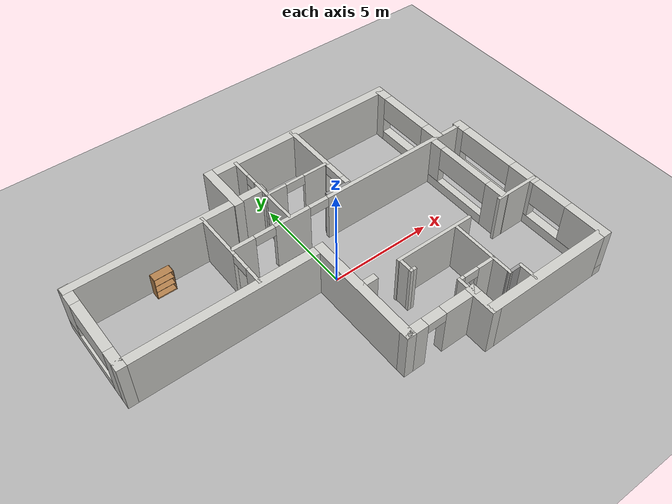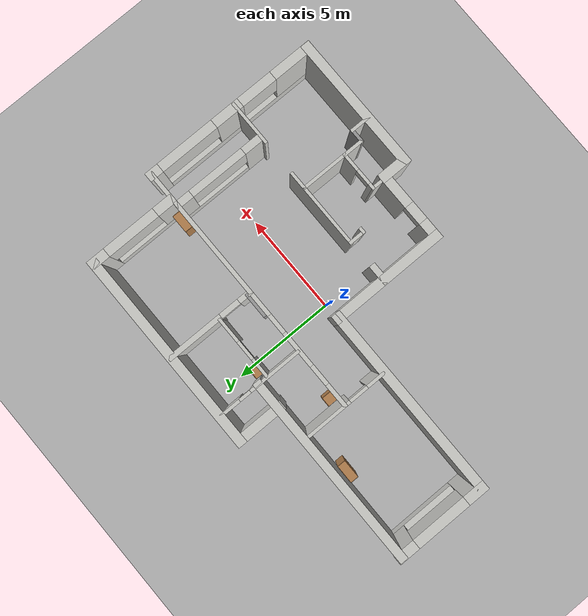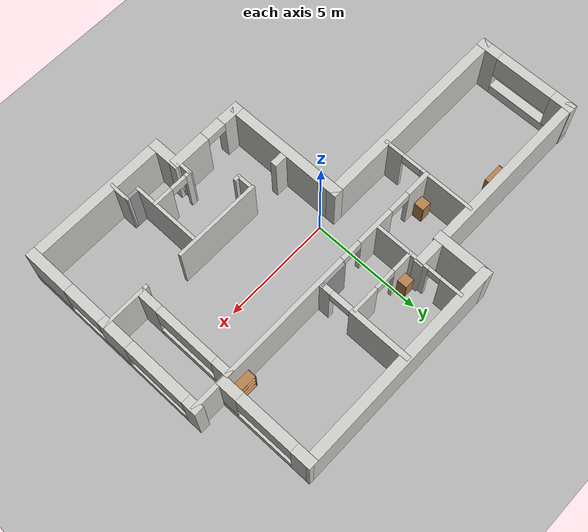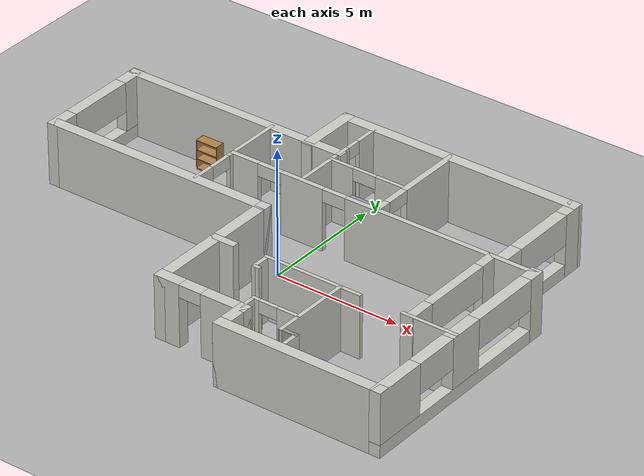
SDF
<sdf version="1.9">
 <world name="default">
  <gravity>0 0 -9.8</gravity>
  <magnetic_field>6e-06 2.3e-05 -4.2e-05</magnetic_field>
  <atmosphere type="adiabatic"/>
  <physics type="ode">
   <max_step_size>0.001</max_step_size>
   <real_time_factor>1</real_time_factor>
   <real_time_update_rate>1000</real_time_update_rate>
  </physics>
  <scene><ambient>0.4 0.4 0.4 1</ambient><background>0.7 0.7 0.7 1</background><shadows>true</shadows></scene>
  <model name="Flat">
   <pose>-0.431116 0.065599 0 0 -0 0</pose>
   <link name="Wall_13">
    <collision name="Wall_13_Collision">
     <geometry><box><size>10.0498 0.45 2.5</size></box></geometry>
     <pose>0 0 1.25 0 -0 0</pose>
    </collision>
    <visual name="Wall_13_Visual">
     <pose>0 0 1.25 0 -0 0</pose>
     <geometry><box><size>10.0498 0.45 2.5</size></box></geometry>
     <material>
      <script><uri>file://media/materials/scripts/gazebo.material</uri><name>Gazebo/CeilingTiled</name></script>
      <ambient>1 1 1 1</ambient>
     </material>
     <meta><layer>0</layer></meta>
    </visual>
    <pose>3.25612 6.4294 0 0 -0 0</pose>
    <inertial>
     <mass>1</mass>
     <inertia><ixx>1</ixx><ixy>0</ixy><ixz>0</ixz><iyy>1</iyy><iyz>0</iyz><izz>1</izz></inertia>
    </inertial>
   </link>
   <link name="Wall_16">
    <pose>-3.24151 2.22302 0 0 0 -1.57039</pose>
    <visual name="Wall_16_Visual_0">
     <pose>-0.939224 0 1.25 0 -0 0</pose>
     <geometry><box><size>2.5474 0.15 2.5</size></box></geometry>
     <material>
      <script><uri>file://media/materials/scripts/gazebo.material</uri><name>Gazebo/CeilingTiled</name></script>
      <ambient>1 1 1 1</ambient>
     </material>
     <meta><layer>0</layer></meta>
    </visual>
    <collision name="Wall_16_Collision_0">
     <geometry><box><size>2.5474 0.15 2.5</size></box></geometry>
     <pose>-0.939224 0 1.25 0 -0 0</pose>
    </collision>
    <visual name="Wall_16_Visual_1">
     <pose>1.74386 0 1.25 0 -0 0</pose>
     <geometry><box><size>0.938123 0.15 2.5</size></box></geometry>
     <material>
      <script><uri>file://media/materials/scripts/gazebo.material</uri><name>Gazebo/CeilingTiled</name></script>
      <ambient>1 1 1 1</ambient>
     </material>
     <meta><layer>0</layer></meta>
    </visual>
    <collision name="Wall_16_Collision_1">
     <geometry><box><size>0.938123 0.15 2.5</size></box></geometry>
     <pose>1.74386 0 1.25 0 -0 0</pose>
    </collision>
    <visual name="Wall_16_Visual_2">
     <pose>0.804637 0 2.25 0 -0 0</pose>
     <geometry><box><size>0.940325 0.15 0.5</size></box></geometry>
     <material>
      <script><uri>file://media/materials/scripts/gazebo.material</uri><name>Gazebo/CeilingTiled</name></script>
      <ambient>1 1 1 1</ambient>
     </material>
     <meta><layer>0</layer></meta>
    </visual>
    <collision name="Wall_16_Collision_2">
     <geometry><box><size>0.940325 0.15 0.5</size></box></geometry>
     <pose>0.804637 0 2.25 0 -0 0</pose>
    </collision>
    <inertial>
     <mass>1</mass>
     <inertia><ixx>1</ixx><ixy>0</ixy><ixz>0</ixz><iyy>1</iyy><iyz>0</iyz><izz>1</izz></inertia>
    </inertial>
   </link>
   <link name="Wall_20">
    <collision name="Wall_20_Collision">
     <geometry><box><size>6.79979 0.45 2.5</size></box></geometry>
     <pose>0 0 1.25 0 -0 0</pose>
    </collision>
    <visual name="Wall_20_Visual">
     <pose>0 0 1.25 0 -0 0</pose>
     <geometry><box><size>6.79979 0.45 2.5</size></box></geometry>
     <material>
      <script><uri>file://media/materials/scripts/gazebo.material</uri><name>Gazebo/CeilingTiled</name></script>
      <ambient>1 1 1 1</ambient>
     </material>
     <meta><layer>0</layer></meta>
    </visual>
    <pose>6.21912 -6.4286 0 0 -0 3.14159</pose>
    <inertial>
     <mass>1</mass>
     <inertia><ixx>1</ixx><ixy>0</ixy><ixz>0</ixz><iyy>1</iyy><iyz>0</iyz><izz>1</izz></inertia>
    </inertial>
   </link>
   <link name="Wall_21">
    <collision name="Wall_21_Collision">
     <geometry><box><size>1.53999 0.45 2.5</size></box></geometry>
     <pose>0 0 1.25 0 -0 0</pose>
    </collision>
    <visual name="Wall_21_Visual">
     <pose>0 0 1.25 0 -0 0</pose>
     <geometry><box><size>1.53999 0.45 2.5</size></box></geometry>
     <material>
      <script><uri>file://media/materials/scripts/gazebo.material</uri><name>Gazebo/CeilingTiled</name></script>
      <ambient>1 1 1 1</ambient>
     </material>
     <meta><layer>0</layer></meta>
    </visual>
    <pose>3.04412 -5.8836 0 0 -0 1.5708</pose>
    <inertial>
     <mass>1</mass>
     <inertia><ixx>1</ixx><ixy>0</ixy><ixz>0</ixz><iyy>1</iyy><iyz>0</iyz><izz>1</izz></inertia>
    </inertial>
   </link>
   <link name="Wall_22">
    <pose>1.37962 -5.3386 0 0 -0 3.14159</pose>
    <visual name="Wall_22_Visual_0">
     <pose>-0.981679 0 1.25 0 -0 0</pose>
     <geometry><box><size>1.81564 0.45 2.5</size></box></geometry>
     <material>
      <script><uri>file://media/materials/scripts/gazebo.material</uri><name>Gazebo/CeilingTiled</name></script>
      <ambient>1 1 1 1</ambient>
     </material>
     <meta><layer>0</layer></meta>
    </visual>
    <collision name="Wall_22_Collision_0">
     <geometry><box><size>1.81564 0.45 2.5</size></box></geometry>
     <pose>-0.981679 0 1.25 0 -0 0</pose>
    </collision>
    <visual name="Wall_22_Visual_1">
     <pose>1.36348 0 1.25 0 -0 0</pose>
     <geometry><box><size>1.05204 0.45 2.5</size></box></geometry>
     <material>
      <script><uri>file://media/materials/scripts/gazebo.material</uri><name>Gazebo/CeilingTiled</name></script>
      <ambient>1 1 1 1</ambient>
     </material>
     <meta><layer>0</layer></meta>
    </visual>
    <collision name="Wall_22_Collision_1">
     <geometry><box><size>1.05204 0.45 2.5</size></box></geometry>
     <pose>1.36348 0 1.25 0 -0 0</pose>
    </collision>
    <visual name="Wall_22_Visual_2">
     <pose>0.381803 0 2.25 0 -0 0</pose>
     <geometry><box><size>0.911323 0.45 0.5</size></box></geometry>
     <material>
      <script><uri>file://media/materials/scripts/gazebo.material</uri><name>Gazebo/CeilingTiled</name></script>
      <ambient>1 1 1 1</ambient>
     </material>
     <meta><layer>0</layer></meta>
    </visual>
    <collision name="Wall_22_Collision_2">
     <geometry><box><size>0.911323 0.45 0.5</size></box></geometry>
     <pose>0.381803 0 2.25 0 -0 0</pose>
    </collision>
    <inertial>
     <mass>1</mass>
     <inertia><ixx>1</ixx><ixy>0</ixy><ixz>0</ixz><iyy>1</iyy><iyz>0</iyz><izz>1</izz></inertia>
    </inertial>
   </link>
   <link name="Wall_23">
    <collision name="Wall_23_Collision">
     <geometry><box><size>5.8 0.45 2.5</size></box></geometry>
     <pose>0 0 1.25 0 -0 0</pose>
    </collision>
    <visual name="Wall_23_Visual">
     <pose>0 0 1.25 0 -0 0</pose>
     <geometry><box><size>5.8 0.45 2.5</size></box></geometry>
     <material>
      <script><uri>file://media/materials/scripts/gazebo.material</uri><name>Gazebo/CeilingTiled</name></script>
      <ambient>1 1 1 1</ambient>
     </material>
     <meta><layer>0</layer></meta>
    </visual>
    <pose>-0.284884 -2.6636 0 0 -0 1.5708</pose>
    <inertial>
     <mass>1</mass>
     <inertia><ixx>1</ixx><ixy>0</ixy><ixz>0</ixz><iyy>1</iyy><iyz>0</iyz><izz>1</izz></inertia>
    </inertial>
   </link>
   <link name="Wall_25">
    <collision name="Wall_25_Collision">
     <geometry><box><size>9.571 0.45 2.5</size></box></geometry>
     <pose>0 0 1.25 0 -0 0</pose>
    </collision>
    <visual name="Wall_25_Visual">
     <pose>0 0 1.25 0 -0 0</pose>
     <geometry><box><size>9.571 0.45 2.5</size></box></geometry>
     <material>
      <script><uri>file://media/materials/scripts/gazebo.material</uri><name>Gazebo/CeilingTiled</name></script>
      <ambient>1 1 1 1</ambient>
     </material>
     <meta><layer>0</layer></meta>
    </visual>
    <pose>-4.84539 0.011401 0 0 -0 3.14159</pose>
    <inertial>
     <mass>1</mass>
     <inertia><ixx>1</ixx><ixy>0</ixy><ixz>0</ixz><iyy>1</iyy><iyz>0</iyz><izz>1</izz></inertia>
    </inertial>
   </link>
   <link name="Wall_26">
    <pose>-9.40588 2.1864 0 0 -0 1.5708</pose>
    <visual name="Wall_26_Visual_0">
     <pose>-1.87053 0 1.25 0 -0 0</pose>
     <geometry><box><size>1.05894 0.45 2.5</size></box></geometry>
     <material>
      <script><uri>file://media/materials/scripts/gazebo.material</uri><name>Gazebo/CeilingTiled</name></script>
      <ambient>1 1 1 1</ambient>
     </material>
     <meta><layer>0</layer></meta>
    </visual>
    <collision name="Wall_26_Collision_0">
     <geometry><box><size>1.05894 0.45 2.5</size></box></geometry>
     <pose>-1.87053 0 1.25 0 -0 0</pose>
    </collision>
    <visual name="Wall_26_Visual_1">
     <pose>0.52947 0 0.25 0 -0 0</pose>
     <geometry><box><size>3.74106 0.45 0.5</size></box></geometry>
     <material>
      <script><uri>file://media/materials/scripts/gazebo.material</uri><name>Gazebo/CeilingTiled</name></script>
      <ambient>1 1 1 1</ambient>
     </material>
     <meta><layer>0</layer></meta>
    </visual>
    <collision name="Wall_26_Collision_1">
     <geometry><box><size>3.74106 0.45 0.5</size></box></geometry>
     <pose>0.52947 0 0.25 0 -0 0</pose>
    </collision>
    <visual name="Wall_26_Visual_2">
     <pose>1.88559 0 1.5 0 -0 0</pose>
     <geometry><box><size>1.02881 0.45 2</size></box></geometry>
     <material>
      <script><uri>file://media/materials/scripts/gazebo.material</uri><name>Gazebo/CeilingTiled</name></script>
      <ambient>1 1 1 1</ambient>
     </material>
     <meta><layer>0</layer></meta>
    </visual>
    <collision name="Wall_26_Collision_2">
     <geometry><box><size>1.02881 0.45 2</size></box></geometry>
     <pose>1.88559 0 1.5 0 -0 0</pose>
    </collision>
    <visual name="Wall_26_Visual_3">
     <pose>0.015064 0 1.9 0 -0 0</pose>
     <geometry><box><size>2.71225 0.45 1.2</size></box></geometry>
     <material>
      <script><uri>file://media/materials/scripts/gazebo.material</uri><name>Gazebo/CeilingTiled</name></script>
      <ambient>1 1 1 1</ambient>
     </material>
     <meta><layer>0</layer></meta>
    </visual>
    <collision name="Wall_26_Collision_3">
     <geometry><box><size>2.71225 0.45 1.2</size></box></geometry>
     <pose>0.015064 0 1.9 0 -0 0</pose>
    </collision>
    <inertial>
     <mass>1</mass>
     <inertia><ixx>1</ixx><ixy>0</ixy><ixz>0</ixz><iyy>1</iyy><iyz>0</iyz><izz>1</izz></inertia>
    </inertial>
   </link>
   <link name="Wall_28">
    <collision name="Wall_28_Collision">
     <geometry><box><size>9.49 0.4 2.5</size></box></geometry>
     <pose>0 0 1.25 0 -0 0</pose>
    </collision>
    <visual name="Wall_28_Visual">
     <pose>0 0 1.25 0 -0 0</pose>
     <geometry><box><size>9.49 0.4 2.5</size></box></geometry>
     <material>
      <script><uri>file://media/materials/scripts/gazebo.material</uri><name>Gazebo/CeilingTiled</name></script>
      <ambient>1 1 1 1</ambient>
     </material>
     <meta><layer>0</layer></meta>
    </visual>
    <pose>-4.86088 4.3614 0 0 -0 0</pose>
    <inertial>
     <mass>1</mass>
     <inertia><ixx>1</ixx><ixy>0</ixy><ixz>0</ixz><iyy>1</iyy><iyz>0</iyz><izz>1</izz></inertia>
    </inertial>
   </link>
   <link name="Wall_32">
    <pose>2.92112 4.3199 0 0 -0 1.56891</pose>
    <visual name="Wall_32_Visual_0">
     <pose>-1.89381 0 1.25 0 -0 0</pose>
     <geometry><box><size>0.707366 0.25 2.5</size></box></geometry>
     <material>
      <script><uri>file://media/materials/scripts/gazebo.material</uri><name>Gazebo/CeilingTiled</name></script>
      <ambient>1 1 1 1</ambient>
     </material>
     <meta><layer>0</layer></meta>
    </visual>
    <collision name="Wall_32_Collision_0">
     <geometry><box><size>0.707366 0.25 2.5</size></box></geometry>
     <pose>-1.89381 0 1.25 0 -0 0</pose>
    </collision>
    <visual name="Wall_32_Visual_1">
     <pose>0.843457 0 1.25 0 -0 0</pose>
     <geometry><box><size>2.80808 0.25 2.5</size></box></geometry>
     <material>
      <script><uri>file://media/materials/scripts/gazebo.material</uri><name>Gazebo/CeilingTiled</name></script>
      <ambient>1 1 1 1</ambient>
     </material>
     <meta><layer>0</layer></meta>
    </visual>
    <collision name="Wall_32_Collision_1">
     <geometry><box><size>2.80808 0.25 2.5</size></box></geometry>
     <pose>0.843457 0 1.25 0 -0 0</pose>
    </collision>
    <visual name="Wall_32_Visual_2">
     <pose>-1.05036 0 2.25 0 -0 0</pose>
     <geometry><box><size>0.979548 0.25 0.5</size></box></geometry>
     <material>
      <script><uri>file://media/materials/scripts/gazebo.material</uri><name>Gazebo/CeilingTiled</name></script>
      <ambient>1 1 1 1</ambient>
     </material>
     <meta><layer>0</layer></meta>
    </visual>
    <collision name="Wall_32_Collision_2">
     <geometry><box><size>0.979548 0.25 0.5</size></box></geometry>
     <pose>-1.05036 0 2.25 0 -0 0</pose>
    </collision>
    <inertial>
     <mass>1</mass>
     <inertia><ixx>1</ixx><ixy>0</ixy><ixz>0</ixz><iyy>1</iyy><iyz>0</iyz><izz>1</izz></inertia>
    </inertial>
   </link>
   <link name="Wall_40">
    <collision name="Wall_40_Collision">
     <geometry><box><size>3.26896 0.15 2.5</size></box></geometry>
     <pose>0 0 1.25 0 -0 0</pose>
    </collision>
    <visual name="Wall_40_Visual">
     <pose>0 0 1.25 0 -0 0</pose>
     <geometry><box><size>3.26896 0.15 2.5</size></box></geometry>
     <material>
      <script><uri>file://media/materials/scripts/gazebo.material</uri><name>Gazebo/CeilingTiled</name></script>
      <ambient>1 1 1 1</ambient>
     </material>
     <meta><layer>0</layer></meta>
    </visual>
    <pose>4.833 -4.00987 0 0 0 -1.57624</pose>
    <inertial>
     <mass>1</mass>
     <inertia><ixx>1</ixx><ixy>0</ixy><ixz>0</ixz><iyy>1</iyy><iyz>0</iyz><izz>1</izz></inertia>
    </inertial>
   </link>
   <link name="Wall_41">
    <collision name="Wall_41_Collision">
     <geometry><box><size>0.75 0.15 2.5</size></box></geometry>
     <pose>0 0 1.25 0 -0 0</pose>
    </collision>
    <visual name="Wall_41_Visual">
     <pose>0 0 1.25 0 -0 0</pose>
     <geometry><box><size>0.75 0.15 2.5</size></box></geometry>
     <material>
      <script><uri>file://media/materials/scripts/gazebo.material</uri><name>Gazebo/Grey</name></script>
      <ambient>1 1 1 1</ambient>
     </material>
     <meta><layer>0</layer></meta>
    </visual>
    <pose>5.12452 -5.56932 0 0 -0 0</pose>
    <inertial>
     <mass>1</mass>
     <inertia><ixx>1</ixx><ixy>0</ixy><ixz>0</ixz><iyy>1</iyy><iyz>0</iyz><izz>1</izz></inertia>
    </inertial>
   </link>
   <link name="Wall_42">
    <collision name="Wall_42_Collision">
     <geometry><box><size>1 0.15 2.5</size></box></geometry>
     <pose>0 0 1.25 0 -0 0</pose>
    </collision>
    <visual name="Wall_42_Visual">
     <pose>0 0 1.25 0 -0 0</pose>
     <geometry><box><size>1 0.15 2.5</size></box></geometry>
     <material>
      <script><uri>file://media/materials/scripts/gazebo.material</uri><name>Gazebo/CeilingTiled</name></script>
      <ambient>1 1 1 1</ambient>
     </material>
     <meta><layer>0</layer></meta>
    </visual>
    <pose>5.42452 -5.99432 0 0 0 -1.5708</pose>
    <inertial>
     <mass>1</mass>
     <inertia><ixx>1</ixx><ixy>0</ixy><ixz>0</ixz><iyy>1</iyy><iyz>0</iyz><izz>1</izz></inertia>
    </inertial>
   </link>
   <link name="Wall_44">
    <pose>3.89952 -4.63822 0 0 -0 3.14159</pose>
    <visual name="Wall_44_Visual_0">
     <pose>-0.535994 0 1.25 0 -0 0</pose>
     <geometry><box><size>0.928012 0.15 2.5</size></box></geometry>
     <material>
      <script><uri>file://media/materials/scripts/gazebo.material</uri><name>Gazebo/CeilingTiled</name></script>
      <ambient>1 1 1 1</ambient>
     </material>
     <meta><layer>0</layer></meta>
    </visual>
    <collision name="Wall_44_Collision_0">
     <geometry><box><size>0.928012 0.15 2.5</size></box></geometry>
     <pose>-0.535994 0 1.25 0 -0 0</pose>
    </collision>
    <visual name="Wall_44_Visual_1">
     <pose>0.837595 0 1.25 0 -0 0</pose>
     <geometry><box><size>0.32481 0.15 2.5</size></box></geometry>
     <material>
      <script><uri>file://media/materials/scripts/gazebo.material</uri><name>Gazebo/CeilingTiled</name></script>
      <ambient>1 1 1 1</ambient>
     </material>
     <meta><layer>0</layer></meta>
    </visual>
    <collision name="Wall_44_Collision_1">
     <geometry><box><size>0.32481 0.15 2.5</size></box></geometry>
     <pose>0.837595 0 1.25 0 -0 0</pose>
    </collision>
    <visual name="Wall_44_Visual_2">
     <pose>0.301601 0 2.25 0 -0 0</pose>
     <geometry><box><size>0.747178 0.15 0.5</size></box></geometry>
     <material>
      <script><uri>file://media/materials/scripts/gazebo.material</uri><name>Gazebo/CeilingTiled</name></script>
      <ambient>1 1 1 1</ambient>
     </material>
     <meta><layer>0</layer></meta>
    </visual>
    <collision name="Wall_44_Collision_2">
     <geometry><box><size>0.747178 0.15 0.5</size></box></geometry>
     <pose>0.301601 0 2.25 0 -0 0</pose>
    </collision>
    <inertial>
     <mass>1</mass>
     <inertia><ixx>1</ixx><ixy>0</ixy><ixz>0</ixz><iyy>1</iyy><iyz>0</iyz><izz>1</izz></inertia>
    </inertial>
   </link>
   <link name="Wall_45">
    <collision name="Wall_45_Collision">
     <geometry><box><size>0.824477 0.15 2.5</size></box></geometry>
     <pose>0 0 1.25 0 -0 0</pose>
    </collision>
    <visual name="Wall_45_Visual">
     <pose>0 0 1.25 0 -0 0</pose>
     <geometry><box><size>0.824477 0.15 2.5</size></box></geometry>
     <material>
      <script><uri>file://media/materials/scripts/gazebo.material</uri><name>Gazebo/CeilingTiled</name></script>
      <ambient>1 1 1 1</ambient>
     </material>
     <meta><layer>0</layer></meta>
    </visual>
    <pose>2.97377 -4.97546 0 0 0 -1.57302</pose>
    <inertial>
     <mass>1</mass>
     <inertia><ixx>1</ixx><ixy>0</ixy><ixz>0</ixz><iyy>1</iyy><iyz>0</iyz><izz>1</izz></inertia>
    </inertial>
   </link>
   <link name="Wall_47">
    <collision name="Wall_47_Collision">
     <geometry><box><size>0.846256 0.15 2.5</size></box></geometry>
     <pose>0 0 1.25 0 -0 0</pose>
    </collision>
    <visual name="Wall_47_Visual">
     <pose>0 0 1.25 0 -0 0</pose>
     <geometry><box><size>0.846256 0.15 2.5</size></box></geometry>
     <material>
      <script><uri>file://media/materials/scripts/gazebo.material</uri><name>Gazebo/CeilingTiled</name></script>
      <ambient>1 1 1 1</ambient>
     </material>
     <meta><layer>0</layer></meta>
    </visual>
    <pose>1.80793 -2.76499 0 0 0 -1.5708</pose>
    <inertial>
     <mass>1</mass>
     <inertia><ixx>1</ixx><ixy>0</ixy><ixz>0</ixz><iyy>1</iyy><iyz>0</iyz><izz>1</izz></inertia>
    </inertial>
   </link>
   <link name="Wall_53">
    <collision name="Wall_53_Collision">
     <geometry><box><size>2.55044 0.45 2.5</size></box></geometry>
     <pose>0 0 1.25 0 -0 0</pose>
    </collision>
    <visual name="Wall_53_Visual">
     <pose>0 0 1.25 0 -0 0</pose>
     <geometry><box><size>2.55044 0.45 2.5</size></box></geometry>
     <material>
      <script><uri>file://media/materials/scripts/gazebo.material</uri><name>Gazebo/CeilingTiled</name></script>
      <ambient>1 1 1 1</ambient>
     </material>
     <meta><layer>0</layer></meta>
    </visual>
    <pose>-1.54388 5.3794 0 0 0 -1.5708</pose>
    <inertial>
     <mass>1</mass>
     <inertia><ixx>1</ixx><ixy>0</ixy><ixz>0</ixz><iyy>1</iyy><iyz>0</iyz><izz>1</izz></inertia>
    </inertial>
   </link>
   <link name="Wall_59">
    <pose>-0.270526 4.28655 0 0 -0 1.56977</pose>
    <visual name="Wall_59_Visual_0">
     <pose>-0.809294 0 1.25 0 -0 0</pose>
     <geometry><box><size>2.64031 0.15 2.5</size></box></geometry>
     <material>
      <script><uri>file://media/materials/scripts/gazebo.material</uri><name>Gazebo/CeilingTiled</name></script>
      <ambient>1 1 1 1</ambient>
     </material>
     <meta><layer>0</layer></meta>
    </visual>
    <collision name="Wall_59_Collision_0">
     <geometry><box><size>2.64031 0.15 2.5</size></box></geometry>
     <pose>-0.809294 0 1.25 0 -0 0</pose>
    </collision>
    <visual name="Wall_59_Visual_1">
     <pose>1.60981 0 1.25 0 -0 0</pose>
     <geometry><box><size>1.03928 0.15 2.5</size></box></geometry>
     <material>
      <script><uri>file://media/materials/scripts/gazebo.material</uri><name>Gazebo/CeilingTiled</name></script>
      <ambient>1 1 1 1</ambient>
     </material>
     <meta><layer>0</layer></meta>
    </visual>
    <collision name="Wall_59_Collision_1">
     <geometry><box><size>1.03928 0.15 2.5</size></box></geometry>
     <pose>1.60981 0 1.25 0 -0 0</pose>
    </collision>
    <visual name="Wall_59_Visual_2">
     <pose>0.800518 0 2.25 0 -0 0</pose>
     <geometry><box><size>0.579311 0.15 0.5</size></box></geometry>
     <material>
      <script><uri>file://media/materials/scripts/gazebo.material</uri><name>Gazebo/CeilingTiled</name></script>
      <ambient>1 1 1 1</ambient>
     </material>
     <meta><layer>0</layer></meta>
    </visual>
    <collision name="Wall_59_Collision_2">
     <geometry><box><size>0.579311 0.15 0.5</size></box></geometry>
     <pose>0.800518 0 2.25 0 -0 0</pose>
    </collision>
    <inertial>
     <mass>1</mass>
     <inertia><ixx>1</ixx><ixy>0</ixy><ixz>0</ixz><iyy>1</iyy><iyz>0</iyz><izz>1</izz></inertia>
    </inertial>
   </link>
   <link name="Wall_61">
    <pose>3.1136 2.16583 0 0 0 -3.14089</pose>
    <visual name="Wall_61_Visual_0">
     <pose>-2.4794 0 1.25 0 -0 0</pose>
     <geometry><box><size>7.88017 0.2 2.5</size></box></geometry>
     <material>
      <script><uri>file://media/materials/scripts/gazebo.material</uri><name>Gazebo/CeilingTiled</name></script>
      <ambient>1 1 1 1</ambient>
     </material>
     <meta><layer>0</layer></meta>
    </visual>
    <collision name="Wall_61_Collision_0">
     <geometry><box><size>7.88017 0.2 2.5</size></box></geometry>
     <pose>-2.4794 0 1.25 0 -0 0</pose>
    </collision>
    <visual name="Wall_61_Visual_1">
     <pose>3.31421 0 1.25 0 -0 0</pose>
     <geometry><box><size>1.78674 0.2 2.5</size></box></geometry>
     <material>
      <script><uri>file://media/materials/scripts/gazebo.material</uri><name>Gazebo/CeilingTiled</name></script>
      <ambient>1 1 1 1</ambient>
     </material>
     <meta><layer>0</layer></meta>
    </visual>
    <collision name="Wall_61_Collision_1">
     <geometry><box><size>1.78674 0.2 2.5</size></box></geometry>
     <pose>3.31421 0 1.25 0 -0 0</pose>
    </collision>
    <visual name="Wall_61_Visual_2">
     <pose>5.81283 0 1.25 0 -0 0</pose>
     <geometry><box><size>1.21331 0.2 2.5</size></box></geometry>
     <material>
      <script><uri>file://media/materials/scripts/gazebo.material</uri><name>Gazebo/CeilingTiled</name></script>
      <ambient>1 1 1 1</ambient>
     </material>
     <meta><layer>0</layer></meta>
    </visual>
    <collision name="Wall_61_Collision_2">
     <geometry><box><size>1.21331 0.2 2.5</size></box></geometry>
     <pose>5.81283 0 1.25 0 -0 0</pose>
    </collision>
    <visual name="Wall_61_Visual_3">
     <pose>1.94076 0 2.25 0 -0 0</pose>
     <geometry><box><size>0.96015 0.2 0.5</size></box></geometry>
     <material>
      <script><uri>file://media/materials/scripts/gazebo.material</uri><name>Gazebo/CeilingTiled</name></script>
      <ambient>1 1 1 1</ambient>
     </material>
     <meta><layer>0</layer></meta>
    </visual>
    <collision name="Wall_61_Collision_3">
     <geometry><box><size>0.96015 0.2 0.5</size></box></geometry>
     <pose>1.94076 0 2.25 0 -0 0</pose>
    </collision>
    <visual name="Wall_61_Visual_4">
     <pose>4.70688 0 2.25 0 -0 0</pose>
     <geometry><box><size>0.998594 0.2 0.5</size></box></geometry>
     <material>
      <script><uri>file://media/materials/scripts/gazebo.material</uri><name>Gazebo/CeilingTiled</name></script>
      <ambient>1 1 1 1</ambient>
     </material>
     <meta><layer>0</layer></meta>
    </visual>
    <collision name="Wall_61_Collision_4">
     <geometry><box><size>0.998594 0.2 0.5</size></box></geometry>
     <pose>4.70688 0 2.25 0 -0 0</pose>
    </collision>
    <inertial>
     <mass>1</mass>
     <inertia><ixx>1</ixx><ixy>0</ixy><ixz>0</ixz><iyy>1</iyy><iyz>0</iyz><izz>1</izz></inertia>
    </inertial>
   </link>
   <link name="Wall_64">
    <pose>1.27518 3.87256 0 0 -0 0</pose>
    <visual name="Wall_64_Visual_0">
     <pose>-1.10154 0 1.25 0 -0 0</pose>
     <geometry><box><size>1.04693 0.15 2.5</size></box></geometry>
     <material>
      <script><uri>file://media/materials/scripts/gazebo.material</uri><name>Gazebo/CeilingTiled</name></script>
      <ambient>1 1 1 1</ambient>
     </material>
     <meta><layer>0</layer></meta>
    </visual>
    <collision name="Wall_64_Collision_0">
     <geometry><box><size>1.04693 0.15 2.5</size></box></geometry>
     <pose>-1.10154 0 1.25 0 -0 0</pose>
    </collision>
    <visual name="Wall_64_Visual_1">
     <pose>1.00329 0 1.25 0 -0 0</pose>
     <geometry><box><size>1.24341 0.15 2.5</size></box></geometry>
     <material>
      <script><uri>file://media/materials/scripts/gazebo.material</uri><name>Gazebo/CeilingTiled</name></script>
      <ambient>1 1 1 1</ambient>
     </material>
     <meta><layer>0</layer></meta>
    </visual>
    <collision name="Wall_64_Collision_1">
     <geometry><box><size>1.24341 0.15 2.5</size></box></geometry>
     <pose>1.00329 0 1.25 0 -0 0</pose>
    </collision>
    <visual name="Wall_64_Visual_2">
     <pose>-0.098244 0 2.25 0 -0 0</pose>
     <geometry><box><size>0.959661 0.15 0.5</size></box></geometry>
     <material>
      <script><uri>file://media/materials/scripts/gazebo.material</uri><name>Gazebo/CeilingTiled</name></script>
      <ambient>1 1 1 1</ambient>
     </material>
     <meta><layer>0</layer></meta>
    </visual>
    <collision name="Wall_64_Collision_2">
     <geometry><box><size>0.959661 0.15 0.5</size></box></geometry>
     <pose>-0.098244 0 2.25 0 -0 0</pose>
    </collision>
    <inertial>
     <mass>1</mass>
     <inertia><ixx>1</ixx><ixy>0</ixy><ixz>0</ixz><iyy>1</iyy><iyz>0</iyz><izz>1</izz></inertia>
    </inertial>
   </link>
   <link name="Wall_75">
    <collision name="Wall_75_Collision">
     <geometry><box><size>4 0.15 2.5</size></box></geometry>
     <pose>0 0 1.25 0 -0 0</pose>
    </collision>
    <visual name="Wall_75_Visual">
     <pose>0 0 1.25 0 -0 0</pose>
     <geometry><box><size>4 0.15 2.5</size></box></geometry>
     <material>
      <script><uri>file://media/materials/scripts/gazebo.material</uri><name>Gazebo/CeilingTiled</name></script>
      <ambient>1 1 1 1</ambient>
     </material>
     <meta><layer>0</layer></meta>
    </visual>
    <pose>3.70202 -2.41012 0 0 -0 3.14159</pose>
    <inertial>
     <mass>1</mass>
     <inertia><ixx>1</ixx><ixy>0</ixy><ixz>0</ixz><iyy>1</iyy><iyz>0</iyz><izz>1</izz></inertia>
    </inertial>
   </link>
   <link name="Wall_77">
    <collision name="Wall_77_Collision">
     <geometry><box><size>0.312367 0.15 2.5</size></box></geometry>
     <pose>0 0 1.25 0 -0 0</pose>
    </collision>
    <visual name="Wall_77_Visual">
     <pose>0 0 1.25 0 -0 0</pose>
     <geometry><box><size>0.312367 0.15 2.5</size></box></geometry>
     <material>
      <script><uri>file://media/materials/scripts/gazebo.material</uri><name>Gazebo/CeilingTiled</name></script>
      <ambient>1 1 1 1</ambient>
     </material>
     <meta><layer>0</layer></meta>
    </visual>
    <pose>1.88904 -3.1131 0 0 -0 0</pose>
    <inertial>
     <mass>1</mass>
     <inertia><ixx>1</ixx><ixy>0</ixy><ixz>0</ixz><iyy>1</iyy><iyz>0</iyz><izz>1</izz></inertia>
    </inertial>
   </link>
   <link name="Wall_80">
    <collision name="Wall_80_Collision">
     <geometry><box><size>2.25 0.15 2.5</size></box></geometry>
     <pose>0 0 1.25 0 -0 0</pose>
    </collision>
    <visual name="Wall_80_Visual">
     <pose>0 0 1.25 0 -0 0</pose>
     <geometry><box><size>2.25 0.15 2.5</size></box></geometry>
     <material>
      <script><uri>file://media/materials/scripts/gazebo.material</uri><name>Gazebo/CeilingTiled</name></script>
      <ambient>1 1 1 1</ambient>
     </material>
     <meta><layer>0</layer></meta>
    </visual>
    <pose>8.47568 -2.41782 0 0 -0 3.14159</pose>
    <inertial>
     <mass>1</mass>
     <inertia><ixx>1</ixx><ixy>0</ixy><ixz>0</ixz><iyy>1</iyy><iyz>0</iyz><izz>1</izz></inertia>
    </inertial>
   </link>
   <link name="Wall_82">
    <pose>9.40588 -2.12975 0 0 0 -1.5708</pose>
    <visual name="Wall_82_Visual_0">
     <pose>-4.18605 0 1.25 0 -0 0</pose>
     <geometry><box><size>0.677895 0.45 2.5</size></box></geometry>
     <material>
      <script><uri>file://media/materials/scripts/gazebo.material</uri><name>Gazebo/CeilingTiled</name></script>
      <ambient>1 1 1 1</ambient>
     </material>
     <meta><layer>0</layer></meta>
    </visual>
    <collision name="Wall_82_Collision_0">
     <geometry><box><size>0.677895 0.45 2.5</size></box></geometry>
     <pose>-4.18605 0 1.25 0 -0 0</pose>
    </collision>
    <visual name="Wall_82_Visual_1">
     <pose>0.338948 0 0.25 0 -0 0</pose>
     <geometry><box><size>8.3721 0.45 0.5</size></box></geometry>
     <material>
      <script><uri>file://media/materials/scripts/gazebo.material</uri><name>Gazebo/CeilingTiled</name></script>
      <ambient>1 1 1 1</ambient>
     </material>
     <meta><layer>0</layer></meta>
    </visual>
    <collision name="Wall_82_Collision_1">
     <geometry><box><size>8.3721 0.45 0.5</size></box></geometry>
     <pose>0.338948 0 0.25 0 -0 0</pose>
    </collision>
    <visual name="Wall_82_Visual_2">
     <pose>-0.169906 0 1.5 0 -0 0</pose>
     <geometry><box><size>1.447 0.45 2</size></box></geometry>
     <material>
      <script><uri>file://media/materials/scripts/gazebo.material</uri><name>Gazebo/CeilingTiled</name></script>
      <ambient>1 1 1 1</ambient>
     </material>
     <meta><layer>0</layer></meta>
    </visual>
    <collision name="Wall_82_Collision_2">
     <geometry><box><size>1.447 0.45 2</size></box></geometry>
     <pose>-0.169906 0 1.5 0 -0 0</pose>
    </collision>
    <visual name="Wall_82_Visual_3">
     <pose>3.44457 0 1.5 0 -0 0</pose>
     <geometry><box><size>2.16087 0.45 2</size></box></geometry>
     <material>
      <script><uri>file://media/materials/scripts/gazebo.material</uri><name>Gazebo/CeilingTiled</name></script>
      <ambient>1 1 1 1</ambient>
     </material>
     <meta><layer>0</layer></meta>
    </visual>
    <collision name="Wall_82_Collision_3">
     <geometry><box><size>2.16087 0.45 2</size></box></geometry>
     <pose>3.44457 0 1.5 0 -0 0</pose>
    </collision>
    <visual name="Wall_82_Visual_4">
     <pose>-2.37026 0 1.9 0 -0 0</pose>
     <geometry><box><size>2.9537 0.45 1.2</size></box></geometry>
     <material>
      <script><uri>file://media/materials/scripts/gazebo.material</uri><name>Gazebo/CeilingTiled</name></script>
      <ambient>1 1 1 1</ambient>
     </material>
     <meta><layer>0</layer></meta>
    </visual>
    <collision name="Wall_82_Collision_4">
     <geometry><box><size>2.9537 0.45 1.2</size></box></geometry>
     <pose>-2.37026 0 1.9 0 -0 0</pose>
    </collision>
    <visual name="Wall_82_Visual_5">
     <pose>1.45886 0 1.9 0 -0 0</pose>
     <geometry><box><size>1.81054 0.45 1.2</size></box></geometry>
     <material>
      <script><uri>file://media/materials/scripts/gazebo.material</uri><name>Gazebo/CeilingTiled</name></script>
      <ambient>1 1 1 1</ambient>
     </material>
     <meta><layer>0</layer></meta>
    </visual>
    <collision name="Wall_82_Collision_5">
     <geometry><box><size>1.81054 0.45 1.2</size></box></geometry>
     <pose>1.45886 0 1.9 0 -0 0</pose>
    </collision>
    <inertial>
     <mass>1</mass>
     <inertia><ixx>1</ixx><ixy>0</ixy><ixz>0</ixz><iyy>1</iyy><iyz>0</iyz><izz>1</izz></inertia>
    </inertial>
   </link>
   <link name="Wall_87">
    <pose>7.70548 -0.117687 0 0 -0 1.56947</pose>
    <visual name="Wall_87_Visual_0">
     <pose>-1.84379 0 1.25 0 -0 0</pose>
     <geometry><box><size>1.06232 0.35 2.5</size></box></geometry>
     <material>
      <script><uri>file://media/materials/scripts/gazebo.material</uri><name>Gazebo/CeilingTiled</name></script>
      <ambient>1 1 1 1</ambient>
     </material>
     <meta><layer>0</layer></meta>
    </visual>
    <collision name="Wall_87_Collision_0">
     <geometry><box><size>1.06232 0.35 2.5</size></box></geometry>
     <pose>-1.84379 0 1.25 0 -0 0</pose>
    </collision>
    <visual name="Wall_87_Visual_1">
     <pose>0.531159 0 0.25 0 -0 0</pose>
     <geometry><box><size>3.68757 0.35 0.5</size></box></geometry>
     <material>
      <script><uri>file://media/materials/scripts/gazebo.material</uri><name>Gazebo/CeilingTiled</name></script>
      <ambient>1 1 1 1</ambient>
     </material>
     <meta><layer>0</layer></meta>
    </visual>
    <collision name="Wall_87_Collision_1">
     <geometry><box><size>3.68757 0.35 0.5</size></box></geometry>
     <pose>0.531159 0 0.25 0 -0 0</pose>
    </collision>
    <visual name="Wall_87_Visual_2">
     <pose>1.95716 0 1.5 0 -0 0</pose>
     <geometry><box><size>0.835575 0.35 2</size></box></geometry>
     <material>
      <script><uri>file://media/materials/scripts/gazebo.material</uri><name>Gazebo/CeilingTiled</name></script>
      <ambient>1 1 1 1</ambient>
     </material>
     <meta><layer>0</layer></meta>
    </visual>
    <collision name="Wall_87_Collision_2">
     <geometry><box><size>0.835575 0.35 2</size></box></geometry>
     <pose>1.95716 0 1.5 0 -0 0</pose>
    </collision>
    <visual name="Wall_87_Visual_3">
     <pose>0.113371 0 1.9 0 -0 0</pose>
     <geometry><box><size>2.852 0.35 1.2</size></box></geometry>
     <material>
      <script><uri>file://media/materials/scripts/gazebo.material</uri><name>Gazebo/CeilingTiled</name></script>
      <ambient>1 1 1 1</ambient>
     </material>
     <meta><layer>0</layer></meta>
    </visual>
    <collision name="Wall_87_Collision_3">
     <geometry><box><size>2.852 0.35 1.2</size></box></geometry>
     <pose>0.113371 0 1.9 0 -0 0</pose>
    </collision>
    <inertial>
     <mass>1</mass>
     <inertia><ixx>1</ixx><ixy>0</ixy><ixz>0</ixz><iyy>1</iyy><iyz>0</iyz><izz>1</izz></inertia>
    </inertial>
   </link>
   <link name="Wall_89">
    <pose>8.05928 4.36565 0 0 0 -1.56926</pose>
    <visual name="Wall_89_Visual_0">
     <pose>-1.82852 0 1.25 0 -0 0</pose>
     <geometry><box><size>0.920456 0.45 2.5</size></box></geometry>
     <material>
      <script><uri>file://media/materials/scripts/gazebo.material</uri><name>Gazebo/CeilingTiled</name></script>
      <ambient>1 1 1 1</ambient>
     </material>
     <meta><layer>0</layer></meta>
    </visual>
    <collision name="Wall_89_Collision_0">
     <geometry><box><size>0.920456 0.45 2.5</size></box></geometry>
     <pose>-1.82852 0 1.25 0 -0 0</pose>
    </collision>
    <visual name="Wall_89_Visual_1">
     <pose>0.460228 0 0.25 0 -0 0</pose>
     <geometry><box><size>3.65704 0.45 0.5</size></box></geometry>
     <material>
      <script><uri>file://media/materials/scripts/gazebo.material</uri><name>Gazebo/CeilingTiled</name></script>
      <ambient>1 1 1 1</ambient>
     </material>
     <meta><layer>0</layer></meta>
    </visual>
    <collision name="Wall_89_Collision_1">
     <geometry><box><size>3.65704 0.45 0.5</size></box></geometry>
     <pose>0.460228 0 0.25 0 -0 0</pose>
    </collision>
    <visual name="Wall_89_Visual_2">
     <pose>1.79309 0 1.5 0 -0 0</pose>
     <geometry><box><size>0.991319 0.45 2</size></box></geometry>
     <material>
      <script><uri>file://media/materials/scripts/gazebo.material</uri><name>Gazebo/CeilingTiled</name></script>
      <ambient>1 1 1 1</ambient>
     </material>
     <meta><layer>0</layer></meta>
    </visual>
    <collision name="Wall_89_Collision_2">
     <geometry><box><size>0.991319 0.45 2</size></box></geometry>
     <pose>1.79309 0 1.5 0 -0 0</pose>
    </collision>
    <visual name="Wall_89_Visual_3">
     <pose>-0.035431 0 1.9 0 -0 0</pose>
     <geometry><box><size>2.66572 0.45 1.2</size></box></geometry>
     <material>
      <script><uri>file://media/materials/scripts/gazebo.material</uri><name>Gazebo/CeilingTiled</name></script>
      <ambient>1 1 1 1</ambient>
     </material>
     <meta><layer>0</layer></meta>
    </visual>
    <collision name="Wall_89_Collision_3">
     <geometry><box><size>2.66572 0.45 1.2</size></box></geometry>
     <pose>-0.035431 0 1.9 0 -0 0</pose>
    </collision>
    <inertial>
     <mass>1</mass>
     <inertia><ixx>1</ixx><ixy>0</ixy><ixz>0</ixz><iyy>1</iyy><iyz>0</iyz><izz>1</izz></inertia>
    </inertial>
   </link>
   <link name="Wall_91">
    <collision name="Wall_91_Collision">
     <geometry><box><size>1.25 0.15 2.5</size></box></geometry>
     <pose>0 0 1.25 0 -0 0</pose>
    </collision>
    <visual name="Wall_91_Visual">
     <pose>0 0 1.25 0 -0 0</pose>
     <geometry><box><size>1.25 0.15 2.5</size></box></geometry>
     <material>
      <script><uri>file://media/materials/scripts/gazebo.material</uri><name>Gazebo/Grey</name></script>
      <ambient>1 1 1 1</ambient>
     </material>
     <meta><layer>0</layer></meta>
    </visual>
    <pose>2.35189 2.33362 0 0 -0 0</pose>
    <inertial>
     <mass>1</mass>
     <inertia><ixx>1</ixx><ixy>0</ixy><ixz>0</ixz><iyy>1</iyy><iyz>0</iyz><izz>1</izz></inertia>
    </inertial>
   </link>
   <link name="Wall_93">
    <collision name="Wall_93_Collision">
     <geometry><box><size>1 0.3 2.5</size></box></geometry>
     <pose>0 0 1.25 0 -0 0</pose>
    </collision>
    <visual name="Wall_93_Visual">
     <pose>0 0 1.25 0 -0 0</pose>
     <geometry><box><size>1 0.3 2.5</size></box></geometry>
     <material>
      <script><uri>file://media/materials/scripts/gazebo.material</uri><name>Gazebo/CeilingTiled</name></script>
      <ambient>1 1 1 1</ambient>
     </material>
     <meta><layer>0</layer></meta>
    </visual>
    <pose>0.023704 -2.48659 0 0 -0 0</pose>
    <inertial>
     <mass>1</mass>
     <inertia><ixx>1</ixx><ixy>0</ixy><ixz>0</ixz><iyy>1</iyy><iyz>0</iyz><izz>1</izz></inertia>
    </inertial>
   </link>
   <static>true</static>
  </model>
  <model name="ground_plane_0">
   <static>true</static>
   <link name="link">
    <collision name="collision">
     <geometry><plane><normal>0 0 1</normal><size>100 100</size></plane></geometry>
     <surface><friction><ode><mu>100</mu><mu2>50</mu2></ode></friction></surface>
    </collision>
    <visual name="visual">
     <cast_shadows>false</cast_shadows>
     <geometry><plane><normal>0 0 1</normal><size>100 100</size></plane></geometry>
     <material>
      <ambient>0.3 0.3 0.3 1</ambient>
      <diffuse>0.7 0.7 0.7 1</diffuse>
      <specular>0.01 0.01 0.01 1</specular>
     </material>
    </visual>
    <inertial>
     <mass>1</mass>
     <inertia><ixx>1</ixx><ixy>0</ixy><ixz>0</ixz><iyy>1</iyy><iyz>0</iyz><izz>1</izz></inertia>
    </inertial>
   </link>
   <pose>16.8102 13.6913 0 0 -0 0</pose>
  </model>
  <model name="Bookshelf">
   <static>true</static>
   <link name="link">
    <inertial>
     <mass>1</mass>
     <inertia><ixx>1</ixx><ixy>0</ixy><ixz>0</ixz><iyy>1</iyy><iyz>0</iyz><izz>1</izz></inertia>
    </inertial>
    <collision name="back">
     <pose>0 0.005 0.6 0 0 0</pose>
     <geometry><box><size>0.9 0.01 1.2</size></box></geometry>
    </collision>
    <visual name="visual1">
     <pose>0 0.005 0.6 0 0 0</pose>
     <geometry><box><size>0.9 0.01 1.2</size></box></geometry>
     <material>
      <diffuse>1 1 1 1</diffuse>
      <script><uri>file://media/materials/scripts/gazebo.material</uri><name>Gazebo/Wood</name></script>
      <pbr>
       <metal>
        <albedo_map>https://fuel.gazebosim.org/1.0/openrobotics/models/bookshelf/4/files/bookshelf_diffuse.jpg</albedo_map>
       </metal>
      </pbr>
     </material>
    </visual>
    <collision name="left_side">
     <pose>0.45 -0.195 0.6 0 0 0</pose>
     <geometry><box><size>0.02 0.4 1.2</size></box></geometry>
    </collision>
    <visual name="visual2">
     <pose>0.45 -0.195 0.6 0 0 0</pose>
     <geometry><box><size>0.02 0.4 1.2</size></box></geometry>
     <material>
      <diffuse>1 1 1 1</diffuse>
      <script><uri>file://media/materials/scripts/gazebo.material</uri><name>Gazebo/Wood</name></script>
      <pbr>
       <metal>
        <albedo_map>https://fuel.gazebosim.org/1.0/openrobotics/models/bookshelf/4/files/bookshelf_diffuse.jpg</albedo_map>
       </metal>
      </pbr>
     </material>
    </visual>
    <collision name="right_side">
     <pose>-0.45 -0.195 0.6 0 0 0</pose>
     <geometry><box><size>0.02 0.4 1.2</size></box></geometry>
    </collision>
    <visual name="visual3">
     <pose>-0.45 -0.195 0.6 0 0 0</pose>
     <geometry><box><size>0.02 0.4 1.2</size></box></geometry>
     <material>
      <diffuse>1 1 1 1</diffuse>
      <script><uri>file://media/materials/scripts/gazebo.material</uri><name>Gazebo/Wood</name></script>
      <pbr>
       <metal>
        <albedo_map>https://fuel.gazebosim.org/1.0/openrobotics/models/bookshelf/4/files/bookshelf_diffuse.jpg</albedo_map>
       </metal>
      </pbr>
     </material>
    </visual>
    <collision name="bottom">
     <pose>0 -0.195 0.03 0 0 0</pose>
     <geometry><box><size>0.88 0.4 0.06</size></box></geometry>
    </collision>
    <visual name="visual4">
     <pose>0 -0.195 0.03 0 0 0</pose>
     <geometry><box><size>0.88 0.4 0.06</size></box></geometry>
     <material>
      <diffuse>1 1 1 1</diffuse>
      <script><uri>file://media/materials/scripts/gazebo.material</uri><name>Gazebo/Wood</name></script>
      <pbr>
       <metal>
        <albedo_map>https://fuel.gazebosim.org/1.0/openrobotics/models/bookshelf/4/files/bookshelf_diffuse.jpg</albedo_map>
       </metal>
      </pbr>
     </material>
    </visual>
    <collision name="top">
     <pose>0 -0.195 1.19 0 0 0</pose>
     <geometry><box><size>0.88 0.4 0.02</size></box></geometry>
    </collision>
    <visual name="visual5">
     <pose>0 -0.195 1.19 0 0 0</pose>
     <geometry><box><size>0.88 0.4 0.02</size></box></geometry>
     <material>
      <diffuse>1 1 1 1</diffuse>
      <script><uri>file://media/materials/scripts/gazebo.material</uri><name>Gazebo/Wood</name></script>
      <pbr>
       <metal>
        <albedo_map>https://fuel.gazebosim.org/1.0/openrobotics/models/bookshelf/4/files/bookshelf_diffuse.jpg</albedo_map>
       </metal>
      </pbr>
     </material>
    </visual>
    <collision name="low_shelf">
     <pose>0 -0.195 0.43 0 0 0</pose>
     <geometry><box><size>0.88 0.4 0.02</size></box></geometry>
    </collision>
    <visual name="visual6">
     <pose>0 -0.195 0.43 0 0 0</pose>
     <geometry><box><size>0.88 0.4 0.02</size></box></geometry>
     <material>
      <diffuse>1 1 1 1</diffuse>
      <script><uri>file://media/materials/scripts/gazebo.material</uri><name>Gazebo/Wood</name></script>
      <pbr>
       <metal>
        <albedo_map>https://fuel.gazebosim.org/1.0/openrobotics/models/bookshelf/4/files/bookshelf_diffuse.jpg</albedo_map>
       </metal>
      </pbr>
     </material>
    </visual>
    <collision name="high_shelf">
     <pose>0 -0.195 0.8 0 0 0</pose>
     <geometry><box><size>0.88 0.4 0.02</size></box></geometry>
    </collision>
    <visual name="visual7">
     <pose>0 -0.195 0.8 0 0 0</pose>
     <geometry><box><size>0.88 0.4 0.02</size></box></geometry>
     <material>
      <diffuse>1 1 1 1</diffuse>
      <script><uri>file://media/materials/scripts/gazebo.material</uri><name>Gazebo/Wood</name></script>
      <pbr>
       <metal>
        <albedo_map>https://fuel.gazebosim.org/1.0/openrobotics/models/bookshelf/4/files/bookshelf_diffuse.jpg</albedo_map>
       </metal>
      </pbr>
     </material>
    </visual>
   </link>
   <pose>6.91462 2.32622 0 0 -0 3.14159</pose>
  </model>
  <model name="cabinet">
   <static>true</static>
   <link name="cabinet_bottom_plate">
    <inertial>
     <pose>0 0 -1 0 -0 0</pose>
     <inertia>
      <ixx>2.0499999999999998</ixx>
      <ixy>0</ixy>
      <ixz>0</ixz>
      <iyy>2.0499999999999998</iyy>
      <iyz>0</iyz>
      <izz>2.0499999999999998</izz>
     </inertia>
     <mass>25</mass>
    </inertial>
    <collision name="cabinet_bottom_plate_geom">
     <pose>0 0 0.010000 0 0 0</pose>
     <geometry><box><size>0.45 0.45 0.02</size></box></geometry>
    </collision>
    <visual name="cabinet_bottom_plate_geom_visual">
     <pose>0 0 0.010000 0 0 0</pose>
     <geometry><box><size>0.45 0.45 0.02</size></box></geometry>
     <material>
      <script><uri>file://media/materials/scripts/gazebo.material</uri><name>Gazebo/Wood</name></script>
     </material>
    </visual>
    <collision name="cabinet_bottom_plate_geom_cabinet_back_plate">
     <pose>0.235000 0 0.510000 0 0 0</pose>
     <geometry><box><size>0.02 0.45 1.02</size></box></geometry>
    </collision>
    <visual name="cabinet_bottom_plate_geom_cabinet_back_plate_visual">
     <pose>0.235000 0 0.510000 0 0 0</pose>
     <geometry><box><size>0.02 0.45 1.02</size></box></geometry>
     <material>
      <script><uri>file://media/materials/scripts/gazebo.material</uri><name>Gazebo/Wood</name></script>
     </material>
    </visual>
    <collision name="cabinet_bottom_plate_geom_cabinet_left_plate">
     <pose>0 0.235000 0.510000 0 0 0</pose>
     <geometry><box><size>0.45 0.02 1.02</size></box></geometry>
    </collision>
    <visual name="cabinet_bottom_plate_geom_cabinet_left_plate_visual">
     <pose>0 0.235000 0.510000 0 0 0</pose>
     <geometry><box><size>0.45 0.02 1.02</size></box></geometry>
     <material>
      <script><uri>file://media/materials/scripts/gazebo.material</uri><name>Gazebo/Wood</name></script>
     </material>
    </visual>
    <collision name="cabinet_bottom_plate_geom_cabinet_middle_plate">
     <pose>0 0 0.510000 0 0 0</pose>
     <geometry><box><size>0.45 0.45 0.02</size></box></geometry>
    </collision>
    <visual name="cabinet_bottom_plate_geom_cabinet_middle_plate_visual">
     <pose>0 0 0.510000 0 0 0</pose>
     <geometry><box><size>0.45 0.45 0.02</size></box></geometry>
     <material>
      <script><uri>file://media/materials/scripts/gazebo.material</uri><name>Gazebo/Wood</name></script>
     </material>
    </visual>
    <collision name="cabinet_bottom_plate_geom_cabinet_right_plate">
     <pose>0 -0.235000 0.510000 0 0 0</pose>
     <geometry><box><size>0.45 0.02 1.02</size></box></geometry>
    </collision>
    <visual name="cabinet_bottom_plate_geom_cabinet_right_plate_visual">
     <pose>0 -0.235000 0.510000 0 0 0</pose>
     <geometry><box><size>0.45 0.02 1.02</size></box></geometry>
     <material>
      <script><uri>file://media/materials/scripts/gazebo.material</uri><name>Gazebo/Wood</name></script>
     </material>
    </visual>
    <collision name="cabinet_bottom_plate_geom_cabinet_top_plate">
     <pose>0 0 1.010000 0 0 0</pose>
     <geometry><box><size>0.45 0.45 0.02</size></box></geometry>
    </collision>
    <visual name="cabinet_bottom_plate_geom_cabinet_top_plate_visual">
     <pose>0 0 1.010000 0 0 0</pose>
     <geometry><box><size>0.45 0.45 0.02</size></box></geometry>
     <material>
      <script><uri>file://media/materials/scripts/gazebo.material</uri><name>Gazebo/Wood</name></script>
     </material>
    </visual>
   </link>
   <pose>-0.280703 4.22129 0 0 -0 0</pose>
  </model>
  <model name="cabinet_0">
   <static>true</static>
   <link name="cabinet_bottom_plate">
    <inertial>
     <pose>0 0 -1 0 -0 0</pose>
     <inertia>
      <ixx>2.0499999999999998</ixx>
      <ixy>0</ixy>
      <ixz>0</ixz>
      <iyy>2.0499999999999998</iyy>
      <iyz>0</iyz>
      <izz>2.0499999999999998</izz>
     </inertia>
     <mass>25</mass>
    </inertial>
    <collision name="cabinet_bottom_plate_geom">
     <pose>0 0 0.010000 0 0 0</pose>
     <geometry><box><size>0.45 0.45 0.02</size></box></geometry>
    </collision>
    <visual name="cabinet_bottom_plate_geom_visual">
     <pose>0 0 0.010000 0 0 0</pose>
     <geometry><box><size>0.45 0.45 0.02</size></box></geometry>
     <material>
      <script><uri>file://media/materials/scripts/gazebo.material</uri><name>Gazebo/Wood</name></script>
     </material>
    </visual>
    <collision name="cabinet_bottom_plate_geom_cabinet_back_plate">
     <pose>0.235000 0 0.510000 0 0 0</pose>
     <geometry><box><size>0.02 0.45 1.02</size></box></geometry>
    </collision>
    <visual name="cabinet_bottom_plate_geom_cabinet_back_plate_visual">
     <pose>0.235000 0 0.510000 0 0 0</pose>
     <geometry><box><size>0.02 0.45 1.02</size></box></geometry>
     <material>
      <script><uri>file://media/materials/scripts/gazebo.material</uri><name>Gazebo/Wood</name></script>
     </material>
    </visual>
    <collision name="cabinet_bottom_plate_geom_cabinet_left_plate">
     <pose>0 0.235000 0.510000 0 0 0</pose>
     <geometry><box><size>0.45 0.02 1.02</size></box></geometry>
    </collision>
    <visual name="cabinet_bottom_plate_geom_cabinet_left_plate_visual">
     <pose>0 0.235000 0.510000 0 0 0</pose>
     <geometry><box><size>0.45 0.02 1.02</size></box></geometry>
     <material>
      <script><uri>file://media/materials/scripts/gazebo.material</uri><name>Gazebo/Wood</name></script>
     </material>
    </visual>
    <collision name="cabinet_bottom_plate_geom_cabinet_middle_plate">
     <pose>0 0 0.510000 0 0 0</pose>
     <geometry><box><size>0.45 0.45 0.02</size></box></geometry>
    </collision>
    <visual name="cabinet_bottom_plate_geom_cabinet_middle_plate_visual">
     <pose>0 0 0.510000 0 0 0</pose>
     <geometry><box><size>0.45 0.45 0.02</size></box></geometry>
     <material>
      <script><uri>file://media/materials/scripts/gazebo.material</uri><name>Gazebo/Wood</name></script>
     </material>
    </visual>
    <collision name="cabinet_bottom_plate_geom_cabinet_right_plate">
     <pose>0 -0.235000 0.510000 0 0 0</pose>
     <geometry><box><size>0.45 0.02 1.02</size></box></geometry>
    </collision>
    <visual name="cabinet_bottom_plate_geom_cabinet_right_plate_visual">
     <pose>0 -0.235000 0.510000 0 0 0</pose>
     <geometry><box><size>0.45 0.02 1.02</size></box></geometry>
     <material>
      <script><uri>file://media/materials/scripts/gazebo.material</uri><name>Gazebo/Wood</name></script>
     </material>
    </visual>
    <collision name="cabinet_bottom_plate_geom_cabinet_top_plate">
     <pose>0 0 1.010000 0 0 0</pose>
     <geometry><box><size>0.45 0.45 0.02</size></box></geometry>
    </collision>
    <visual name="cabinet_bottom_plate_geom_cabinet_top_plate_visual">
     <pose>0 0 1.010000 0 0 0</pose>
     <geometry><box><size>0.45 0.45 0.02</size></box></geometry>
     <material>
      <script><uri>file://media/materials/scripts/gazebo.material</uri><name>Gazebo/Wood</name></script>
     </material>
    </visual>
   </link>
   <pose>-3.22939 2.56019 0 0 -0 0</pose>
  </model>
  <model name="Bookshelf_0">
   <static>true</static>
   <link name="link">
    <inertial>
     <mass>1</mass>
     <inertia><ixx>1</ixx><ixy>0</ixy><ixz>0</ixz><iyy>1</iyy><iyz>0</iyz><izz>1</izz></inertia>
    </inertial>
    <collision name="back">
     <pose>0 0.005 0.6 0 0 0</pose>
     <geometry><box><size>0.9 0.01 1.2</size></box></geometry>
    </collision>
    <visual name="visual1">
     <pose>0 0.005 0.6 0 0 0</pose>
     <geometry><box><size>0.9 0.01 1.2</size></box></geometry>
     <material>
      <diffuse>1 1 1 1</diffuse>
      <script><uri>file://media/materials/scripts/gazebo.material</uri><name>Gazebo/Wood</name></script>
      <pbr>
       <metal>
        <albedo_map>https://fuel.gazebosim.org/1.0/openrobotics/models/bookshelf/4/files/bookshelf_diffuse.jpg</albedo_map>
       </metal>
      </pbr>
     </material>
    </visual>
    <collision name="left_side">
     <pose>0.45 -0.195 0.6 0 0 0</pose>
     <geometry><box><size>0.02 0.4 1.2</size></box></geometry>
    </collision>
    <visual name="visual2">
     <pose>0.45 -0.195 0.6 0 0 0</pose>
     <geometry><box><size>0.02 0.4 1.2</size></box></geometry>
     <material>
      <diffuse>1 1 1 1</diffuse>
      <script><uri>file://media/materials/scripts/gazebo.material</uri><name>Gazebo/Wood</name></script>
      <pbr>
       <metal>
        <albedo_map>https://fuel.gazebosim.org/1.0/openrobotics/models/bookshelf/4/files/bookshelf_diffuse.jpg</albedo_map>
       </metal>
      </pbr>
     </material>
    </visual>
    <collision name="right_side">
     <pose>-0.45 -0.195 0.6 0 0 0</pose>
     <geometry><box><size>0.02 0.4 1.2</size></box></geometry>
    </collision>
    <visual name="visual3">
     <pose>-0.45 -0.195 0.6 0 0 0</pose>
     <geometry><box><size>0.02 0.4 1.2</size></box></geometry>
     <material>
      <diffuse>1 1 1 1</diffuse>
      <script><uri>file://media/materials/scripts/gazebo.material</uri><name>Gazebo/Wood</name></script>
      <pbr>
       <metal>
        <albedo_map>https://fuel.gazebosim.org/1.0/openrobotics/models/bookshelf/4/files/bookshelf_diffuse.jpg</albedo_map>
       </metal>
      </pbr>
     </material>
    </visual>
    <collision name="bottom">
     <pose>0 -0.195 0.03 0 0 0</pose>
     <geometry><box><size>0.88 0.4 0.06</size></box></geometry>
    </collision>
    <visual name="visual4">
     <pose>0 -0.195 0.03 0 0 0</pose>
     <geometry><box><size>0.88 0.4 0.06</size></box></geometry>
     <material>
      <diffuse>1 1 1 1</diffuse>
      <script><uri>file://media/materials/scripts/gazebo.material</uri><name>Gazebo/Wood</name></script>
      <pbr>
       <metal>
        <albedo_map>https://fuel.gazebosim.org/1.0/openrobotics/models/bookshelf/4/files/bookshelf_diffuse.jpg</albedo_map>
       </metal>
      </pbr>
     </material>
    </visual>
    <collision name="top">
     <pose>0 -0.195 1.19 0 0 0</pose>
     <geometry><box><size>0.88 0.4 0.02</size></box></geometry>
    </collision>
    <visual name="visual5">
     <pose>0 -0.195 1.19 0 0 0</pose>
     <geometry><box><size>0.88 0.4 0.02</size></box></geometry>
     <material>
      <diffuse>1 1 1 1</diffuse>
      <script><uri>file://media/materials/scripts/gazebo.material</uri><name>Gazebo/Wood</name></script>
      <pbr>
       <metal>
        <albedo_map>https://fuel.gazebosim.org/1.0/openrobotics/models/bookshelf/4/files/bookshelf_diffuse.jpg</albedo_map>
       </metal>
      </pbr>
     </material>
    </visual>
    <collision name="low_shelf">
     <pose>0 -0.195 0.43 0 0 0</pose>
     <geometry><box><size>0.88 0.4 0.02</size></box></geometry>
    </collision>
    <visual name="visual6">
     <pose>0 -0.195 0.43 0 0 0</pose>
     <geometry><box><size>0.88 0.4 0.02</size></box></geometry>
     <material>
      <diffuse>1 1 1 1</diffuse>
      <script><uri>file://media/materials/scripts/gazebo.material</uri><name>Gazebo/Wood</name></script>
      <pbr>
       <metal>
        <albedo_map>https://fuel.gazebosim.org/1.0/openrobotics/models/bookshelf/4/files/bookshelf_diffuse.jpg</albedo_map>
       </metal>
      </pbr>
     </material>
    </visual>
    <collision name="high_shelf">
     <pose>0 -0.195 0.8 0 0 0</pose>
     <geometry><box><size>0.88 0.4 0.02</size></box></geometry>
    </collision>
    <visual name="visual7">
     <pose>0 -0.195 0.8 0 0 0</pose>
     <geometry><box><size>0.88 0.4 0.02</size></box></geometry>
     <material>
      <diffuse>1 1 1 1</diffuse>
      <script><uri>file://media/materials/scripts/gazebo.material</uri><name>Gazebo/Wood</name></script>
      <pbr>
       <metal>
        <albedo_map>https://fuel.gazebosim.org/1.0/openrobotics/models/bookshelf/4/files/bookshelf_diffuse.jpg</albedo_map>
       </metal>
      </pbr>
     </material>
    </visual>
   </link>
   <pose>-6.09587 4.15545 0 0 -0 0</pose>
  </model>
  <light name="pointlight" type="point">
   <pose>1.64539 0.247249 2 0 -0 0</pose>
   <cast_shadows>false</cast_shadows>
   <intensity>1</intensity>
   <direction>0 0 -1</direction>
   <diffuse>0.5 0.5 0.5 1</diffuse>
   <specular>0.5 0.5 0.5 1</specular>
   <attenuation>
    <range>4</range>
    <linear>0.5</linear>
    <constant>0.20000000000000001</constant>
    <quadratic>0.01</quadratic>
   </attenuation>
   <spot><inner_angle>0</inner_angle><outer_angle>0</outer_angle><falloff>0</falloff></spot>
  </light>
  <light name="sun" type="directional">
   <pose>-11.0231 -8.97193 10 0 -0 0</pose>
   <intensity>1</intensity>
   <direction>-0.5 0.1 -0.9</direction>
   <diffuse>0.8 0.8 0.8 1</diffuse>
   <specular>0.2 0.2 0.2 1</specular>
   <attenuation>
    <range>1000</range>
    <linear>0.01</linear>
    <constant>0.90000000000000002</constant>
    <quadratic>0.001</quadratic>
   </attenuation>
   <spot><inner_angle>0</inner_angle><outer_angle>0</outer_angle><falloff>0</falloff></spot>
  </light>
  <light name="spotlight" type="spot">
   <pose>-5.48432 -4.03344 2 0 -0 0</pose>
   <intensity>1</intensity>
   <direction>0 0 -1</direction>
   <diffuse>0.5 0.5 0.5 1</diffuse>
   <specular>0.5 0.5 0.5 1</specular>
   <attenuation>
    <range>4</range>
    <linear>0.5</linear>
    <constant>0.20000000000000001</constant>
    <quadratic>0.01</quadratic>
   </attenuation>
   <spot>
    <inner_angle>0.10000000000000001</inner_angle>
    <outer_angle>0.5</outer_angle>
    <falloff>0.80000000000000004</falloff>
   </spot>
  </light>
  <light name="sun_0" type="directional">
   <pose>9.88025 19.3758 10 0 -0 0</pose>
   <intensity>1</intensity>
   <direction>-0.5 0.1 -0.9</direction>
   <diffuse>0.8 0.8 0.8 1</diffuse>
   <specular>0.2 0.2 0.2 1</specular>
   <attenuation>
    <range>1000</range>
    <linear>0.01</linear>
    <constant>0.90000000000000002</constant>
    <quadratic>0.001</quadratic>
   </attenuation>
   <spot><inner_angle>0</inner_angle><outer_angle>0</outer_angle><falloff>0</falloff></spot>
  </light>
 </world>
</sdf>
